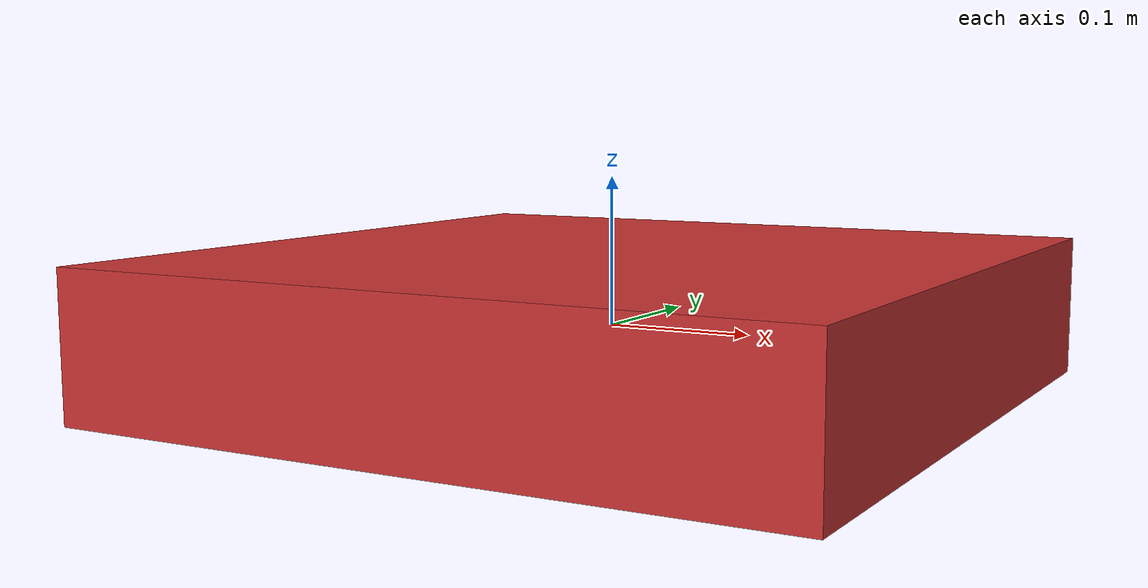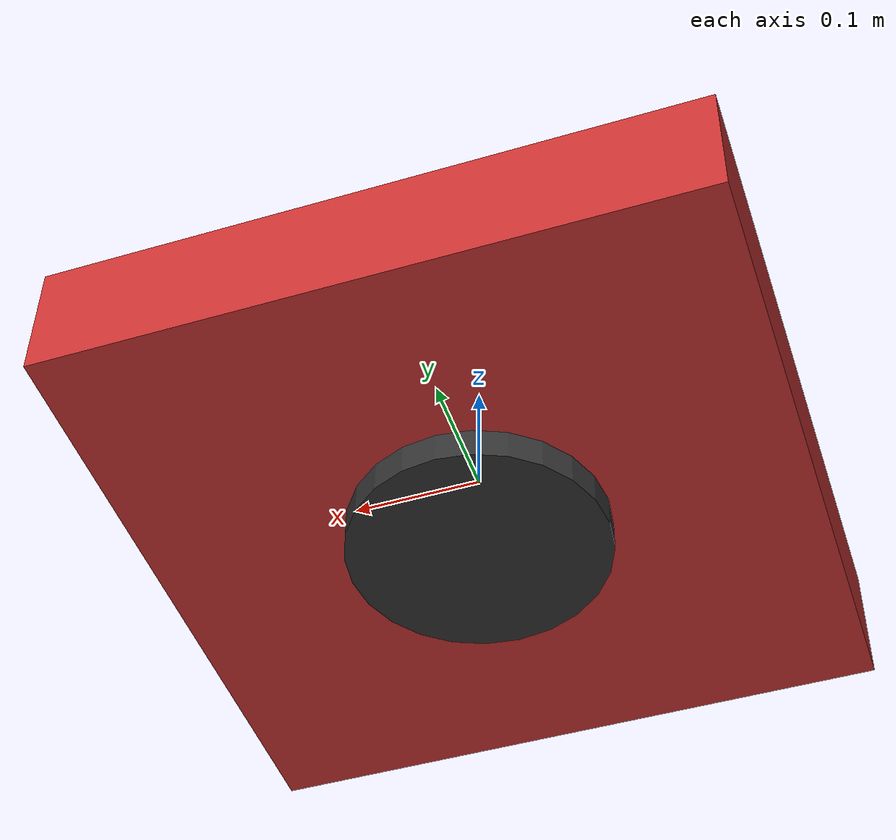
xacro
<?xml version="1.0"?>
<robot name="test_robot_with_args" xmlns:xacro="http://www.ros.org/wiki/xacro">

  <!-- Define arguments that can be passed from outside -->
  <xacro:arg name="robot_name" default="default_robot"/>
  <xacro:arg name="base_size" default="0.5"/>
  <xacro:arg name="wheel_count" default="4"/>

  <!-- Properties using arguments -->
  <xacro:property name="robot_name_value" value="$(arg robot_name)"/>
  <xacro:property name="base_size_value" value="$(arg base_size)"/>

  <!-- Base link using argument values -->
  <link name="$(arg robot_name)_base_link">
    <visual>
      <geometry>
        <box size="$(arg base_size) $(arg base_size) 0.1"/>
      </geometry>
      <material name="base_material">
        <color rgba="0.8 0.2 0.2 1.0"/>
      </material>
    </visual>
  </link>

  <!-- Wheel link -->
  <link name="wheel">
    <visual>
      <geometry>
        <cylinder radius="0.1" length="0.05"/>
      </geometry>
      <material name="wheel_material">
        <color rgba="0.2 0.2 0.2 1.0"/>
      </material>
    </visual>
  </link>

  <joint name="wheel_joint" type="continuous">
    <parent link="$(arg robot_name)_base_link"/>
    <child link="wheel"/>
    <origin xyz="0 0 -0.05" rpy="0 0 0"/>
    <axis xyz="0 1 0"/>
  </joint>

</robot>
